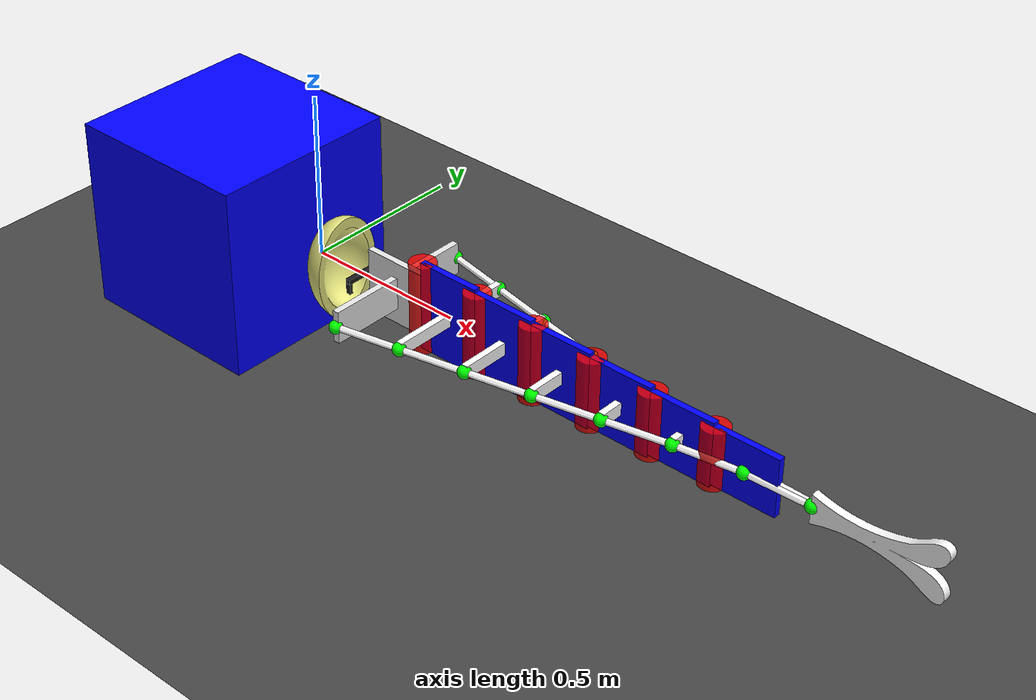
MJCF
<!-- Differs from Distler with different mass and damping coefficients. Test setup is more analgoous to a brick wall that is being pushed on-->
<!--Not explicitly used in any scripts-->
<mujoco model="tendonFish">
    <option integrator="implicitfast" timestep="0.01" iterations="50" solver="Newton"
            tolerance="1e-10" gravity="0 0 0" density="1000" viscosity="0.001"/>

    <visual>
        <global offheight="2160" offwidth="3840" />
        <rgba haze=".3 .3 .3 1" />
    </visual>

    <!-- Environment parameters -->
    <asset>
        <mesh name="tailMesh" file="mujoco-3.3.2-windows-x86_64/model/mesh/UpdatedTail.STL" scale="0.0045 0.0045 0.0065" />
        <mesh name="headMesh" file="mujoco-3.3.2-windows-x86_64/model/mesh/FishNose.STL" scale="0.0045 0.0045 0.0065" />
        <texture type="skybox" builtin="gradient" rgb1="0.6 0.6 0.6" rgb2="0 0 0" width="512" height="512" />
        <texture name="texplane" type="2d" builtin="checker" rgb1=".25 .25 .25" rgb2=".3 .3 .3"
                 width="512" height="512" mark="cross" markrgb=".8 .8 .8" />
        <material name="matplane" reflectance="0.3" texture="texplane" texrepeat="1 1" texuniform="true" />
    </asset>

    <default>
        <joint type="hinge" pos="0 0 0" axis="0 0 1" range="-80 80" stiffness="10" damping="0.1" />
    </default>

    <!-- World body and fish structure -->
    <worldbody>
        <camera name="fixed" pos="0.4 -1.2 1.2" xyaxes="1 0 0 0 1 1" />
        <camera name="fixedTop" pos="-0.75 0 1.5" xyaxes="0 -1 0 1 0 0.75" />
        <camera name="fixedDiag" pos="2.5 -4.0 4.0" xyaxes="0.8 0.6 0 -0.4 0.5 0.75" />
        <geom name="floor" pos="0 0 -0.5" size="0 0 1" type="plane" material="matplane" />
        <light directional="true" diffuse=".8 .8 .8" specular=".2 .2 .2" pos="0 0 5" dir="0 0 -1" />

        <body name="slider_body" pos="-.35 0  0">
        <!-- Creates a slider joint with very high damping. Need to position it tangent to the fish, and then figure out how to report the N3 law pair acting on it-->
            <joint name="slider_joint" type="slide" axis="1 0 0" damping="10000.0"/>
            <geom type="box" size=".3 .3 .3" rgba="0 0 1 1" contype="1" conaffinity="1" mass="1"/>
        </body>

        <body pos="0 0 0" name="fish_head">
            <freejoint />
           <geom name="head_mesh" type="mesh" mesh="headMesh" pos=".1 .115 .15" quat="0 -0.7071 0.7071 0"
              rgba=".9 .9 .5 1" mass=".25" fluidshape="ellipsoid" contype="1" conaffinity="1"/>
            <geom name="headSegment" type="box" pos="0.3 0 0" size="0.1 0.01 0.1"
                  rgba=".9 .9 .9 1" mass="0.1" />
            <geom name="headLeft" type="box" pos="0.3 -0.12 0" size="0.01 .12 0.05"
                  rgba=".9 .9 .9 1" mass="0.1" />
            <geom name="headRight" type="box" pos="0.3 0.12 0" size="0.01 .12 0.05"
                  rgba=".9 .9 .9 1" mass="0.1" />
            <site name="headLeft" pos="0.3 -0.24 0" size="0.02" rgba="0 255 0 1" />
            <site name="headRight" pos="0.3 0.24 0" size="0.02" rgba="0 255 0 1" />

            <body pos="0.1655 0 0" name="motor">
                <joint name="motor" type="hinge" axis="0 1 0" pos="0 0 0" limited="false" stiffness="0" damping="0"/>
                <geom name="motorShaft" type="box" pos="0 0 0" size="0.0075 0.06 0.0075" rgba=".1 .1 .1 1" mass="0.05" fluidshape="ellipsoid"/>
                <geom name="motorArmLeft" type="box" pos="0 -0.055 -0.01975" size="0.0075 0.005 0.01975" rgba=".1 .1 .1 1" density="1250" fluidshape="ellipsoid"/>
                <geom name="motorArmRight" type="box" pos="0 0.055 0.01975" size="0.0075 0.005 0.01975" rgba=".1 .1 .1 1" density="1250" fluidshape="ellipsoid"/>

                <site name="bodyLeft" pos="0 -0.055 -0.0345" size="0.005" rgba=".9 .6 .5 .5"/>
                <site name="bodyRight" pos="0 0.055 0.0345" size="0.005" rgba=".9 .6 .5 .5"/>
            </body>

            <body pos="0.4 0 0">
                <geom name="headJoint" type="cylinder" pos="0 0 0" size="0.04 0.14" rgba="255 0 0 .8" mass="0" />
                <joint name="headJoint" />
                <!-- Changes the tail0 size -->
                <geom name="tail0" type="box" pos="0.1 0 0" size="0.1 0.01 0.14" rgba="0 0 255 1" mass="0.1" />
                <geom name="tail0left" type="box" pos="0.1 -0.1 0" size="0.01 .1 0.02" rgba="1 1 1 1" mass="0.1" />
                <geom name="tail0right" type="box" pos="0.1 0.1 0" size="0.01 .1 0.02" rgba="1 1 1 1" mass="0.1" />
                <site name="tail0left" pos="0.1 -0.2 0" size="0.02" rgba="0 255 0 1" />
                <site name="tail0right" pos="0.1 0.2 0" size="0.02" rgba="0 255 0 1" />

                <body pos="0.2 0 0">
                    <geom name="joint01" type="cylinder" pos="0 0 0" size="0.04 0.13" rgba="255 0 0 .8" mass="0" />
                    <joint name="joint01" />
                    <geom name="tail1" type="box" pos="0.1 0 0" size="0.1 0.01 0.13" rgba="0 0 255 1" mass="0.1" fluidshape="ellipsoid"/>
                    <geom name="tail1left" type="box" pos="0.1 -0.08 0" size="0.01 0.08 0.02" rgba="1 1 1 1" mass="0.1" />
                    <geom name="tail1right" type="box" pos="0.1 0.08 0" size="0.01 0.08 0.02" rgba="1 1 1 1" mass="0.1" />
                    <site name="tail1left" pos="0.1 -0.16 0" size="0.02" rgba="0 255 0 1" />
                    <site name="tail1right" pos="0.1 0.16 0" size="0.02" rgba="0 255 0 1" />
                <!-- Tail changed below. . . could try much smaller steps-->
                    <body pos="0.2 0 0">
                        <geom name="joint12" type="cylinder" pos="0 0 0" size="0.04 0.12" rgba="255 0 0 .8" mass="0" />
                        <joint name="joint12" />
                        <geom name="tail2" type="box" pos="0.1 0 0" size="0.1 0.01 0.12" rgba="0 0 255 1" mass="0.1" fluidshape="ellipsoid"/>
                        <geom name="tail2left" type="box" pos="0.1 -0.06 0" size="0.01 0.06 0.02" rgba="1 1 1 1" mass="0.1" />
                        <geom name="tail2right" type="box" pos="0.1 0.06 0" size="0.01 0.06 0.02" rgba="1 1 1 1" mass="0.1" />
                        <site name="tail2left" pos="0.1 -0.12 0" size="0.02" rgba="0 255 0 1" />
                        <site name="tail2right" pos="0.1 0.12 0" size="0.02" rgba="0 255 0 1" />

                        <body pos="0.2 0 0">
                            <geom name="joint23" type="cylinder" pos="0 0 0" size="0.04 0.11" rgba="255 0 0 .8" mass="0" />
                            <joint name="joint23" />
                            <geom name="tail3" type="box" pos="0.1 0 0" size="0.1 0.01 0.11" rgba="0 0 255 1" mass="0.1" fluidshape="ellipsoid"/>
                            <geom name="tail3left" type="box" pos="0.1 -0.04 0" size="0.01 0.04 0.02" rgba="1 1 1 1" mass="0.1" />
                            <geom name="tail3right" type="box" pos="0.1 0.04 0" size="0.01 0.04 0.02" rgba="1 1 1 1" mass="0.1" />
                            <site name="tail3left" pos="0.1 -0.08 0" size="0.02" rgba="0 255 0 1" />
                            <site name="tail3right" pos="0.1 0.08 0" size="0.02" rgba="0 255 0 1" />

                            <body pos="0.2 0 0">
                                <geom name="joint34" type="cylinder" pos="0 0 0" size="0.04 0.1" rgba="255 0 0 .8" mass="0" />
                                <joint name="joint34" />
                                <!-- changes color from .5 .5 .8 1-->
                                <geom name="tail4" type="box" pos="0.1 0 0" size="0.1 0.01 0.1" rgba="0 0 255 1" mass="0.1" fluidshape="ellipsoid"/>
                                <geom name="tail4left" type="box" pos="0.1 -0.02 0" size="0.01 0.02 0.02" rgba="1 1 1 1" mass="0.1" />
                                <geom name="tail4right" type="box" pos="0.1 0.02 0" size="0.01 0.02 0.02" rgba="1 1 1 1" mass="0.1" />
                                <site name="tail4left" pos="0.1 -0.04 0" size="0.02" rgba="0 255 0 1" />
                                <site name="tail4right" pos="0.1 0.04 0" size="0.02" rgba="0 255 0 1" />

                                <body pos="0.2 0 0">
                                    <geom name="joint45" type="cylinder" pos="0 0 0" size="0.04 0.09" rgba="255 0 0 .8" mass="0" />
                                    <joint name="joint45" />
                                    <geom name="tail5" type="box" pos="0.1 0 0" size="0.1 0.01 0.09" rgba="0 0 255 1" mass="0.1" fluidshape="ellipsoid"/>
                                    <geom name="tail5left" type="box" pos="0.1 -0.005 0" size="0.01 0.005 0.02" rgba="1 1 1 1" mass="0.1" />
                                    <geom name="tail5right" type="box" pos="0.1 0.005 0" size="0.01 0.005 0.02" rgba="1 1 1 1" mass="0.1" />
                                    <site name="tail5left" pos="0.1 -0.01 0" size="0.02" rgba="0 255 0 1" />
                                    <site name="tail5right" pos="0.1 0.01 0" size="0.02" rgba="0 255 0 1" />

                                    <body pos="0.2 0 0" euler="0 0 0">
                                        <geom name="tailJoint" type="mesh" mesh ="tailMesh" pos=".1 .015 -0.1" size ="0.05 .01 .08" quat="0.7071 0.7071 0 0" rgba="255 255 255 1" mass=".1" />
                                        <geom name="tailLeft" type="box" pos="0.1 -0.002 0" size="0.01 0.002 0.02" rgba=".9 .9 .9 1" mass="0.1" />
                                        <geom name="tailRight" type="box" pos="0.1 0.002 0" size="0.01 0.002 0.02" rgba=".9 .9 .9 1" mass="0.1" />
                                        <site name="tailLeft" pos="0.1 -0.004 0" size="0.02" rgba="0 255 0 1" />
                                        <site name="tailRight" pos="0.1 0.004 0" size="0.02" rgba="0 255 0 1" />
                                    </body>
                                </body>
                            </body>
                        </body>
                    </body>
                </body>
            </body>
        </body>
    </worldbody>

    <tendon>
        <spatial name="tendonLeft" width="0.01" rgba="1 1 1 1" stiffness="1" damping="0.5">
            <site site="headLeft" />
            <site site="tail0left" />
            <site site="tail1left" />
            <site site="tail2left" />
            <site site="tail3left" />
            <site site="tail4left" />
            <site site="tail5left" />
            <site site="tailLeft" />
        </spatial>
        <spatial name="tendonRight" width="0.01" rgba="1 1 1 1" stiffness="1" damping="0.5">
            <site site="headRight" />
            <site site="tail0right" />
            <site site="tail1right" />
            <site site="tail2right" />
            <site site="tail3right" />
            <site site="tail4right" />
            <site site="tail5right" />
            <site site="tailRight" />
        </spatial>
    </tendon>

    <actuator>
        <position name="muscleLeft" tendon="tendonLeft" ctrlrange="0.4 1.5" kp="100" kv="10" />
        <position name="muscleRight" tendon="tendonRight" ctrlrange="0.4 1.5" kp="100" kv="10" />
        <position joint="slider_joint" kp="100" />
    </actuator>

</mujoco>
